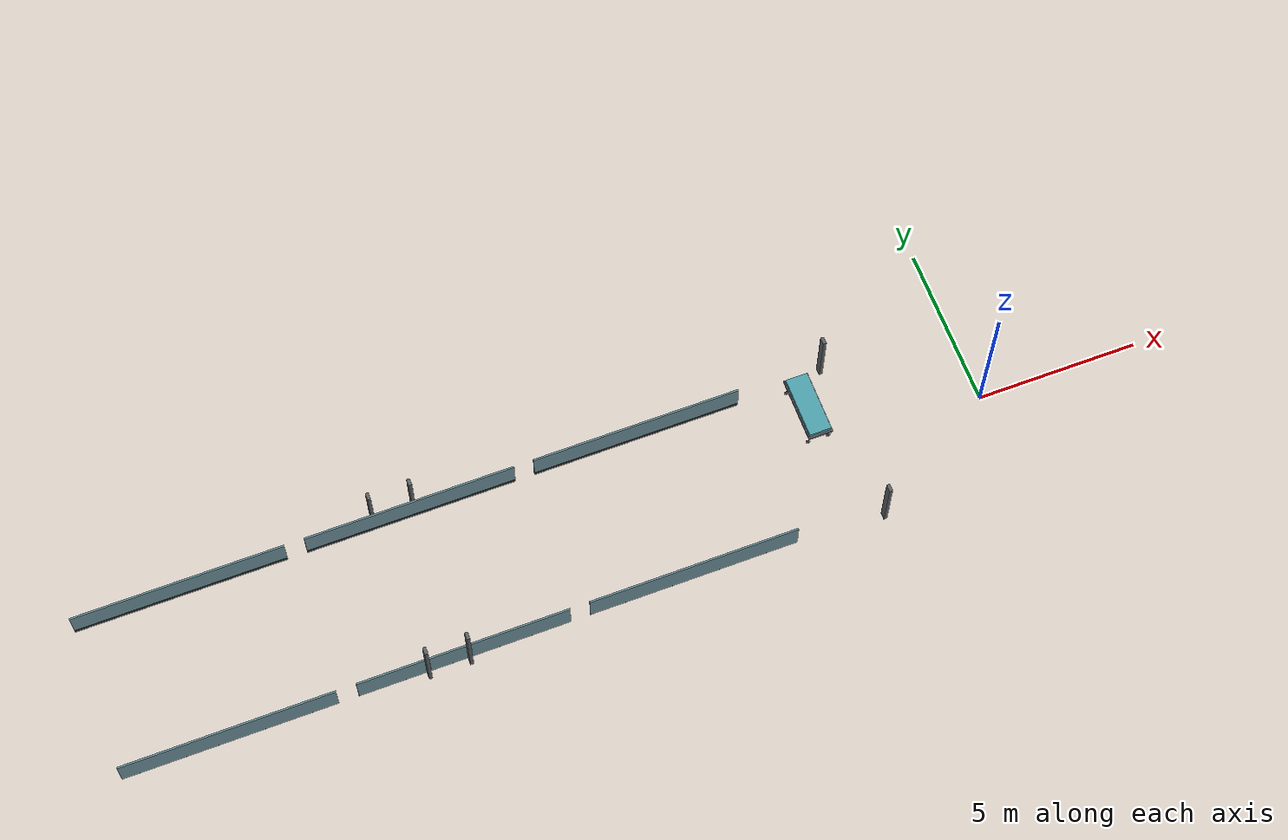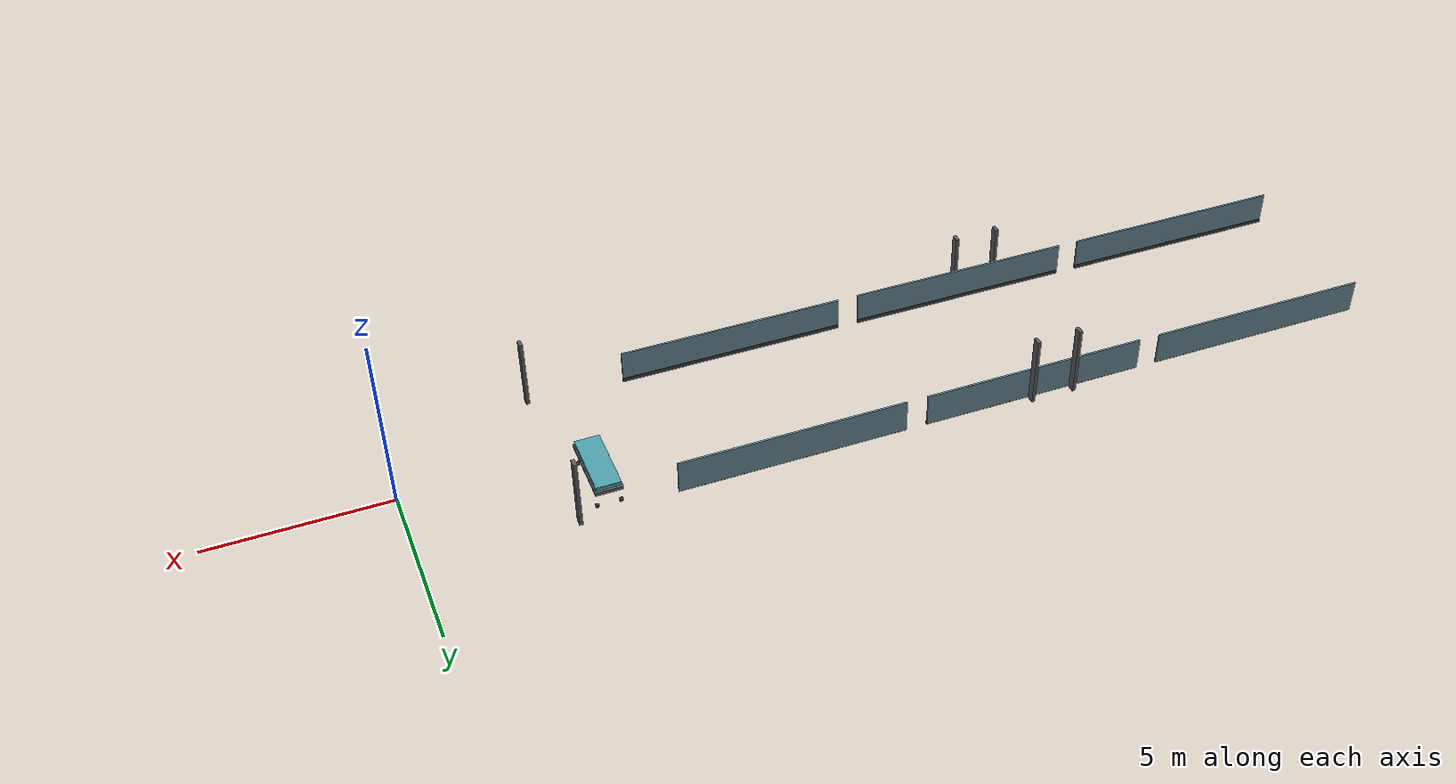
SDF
<sdf version="1.6">
 <world name="hospital">
  <include><uri>model://sun</uri></include>
  <model name="enh_wainscot_0_0">
   <static>true</static>
   <pose>-24.0 -2.36 0.49 0 0 0</pose>
   <link name="link">
    <collision name="c"><geometry><box><size>6.4 0.05 0.95</size></box></geometry></collision>
    <visual name="v">
     <geometry><box><size>6.4 0.05 0.95</size></box></geometry>
     <material>
      <ambient>0.420 0.560 0.600 1</ambient>
      <diffuse>0.420 0.560 0.600 1</diffuse>
      <specular>0.1 0.1 0.1 1</specular>
     </material>
    </visual>
   </link>
  </model>
  <model name="enh_baseboard_0_0">
   <static>true</static>
   <pose>-24.0 -2.35 0.06 0 0 0</pose>
   <link name="link">
    <collision name="c"><geometry><box><size>6.4 0.06 0.12</size></box></geometry></collision>
    <visual name="v">
     <geometry><box><size>6.4 0.06 0.12</size></box></geometry>
     <material>
      <ambient>0.220 0.240 0.250 1</ambient>
      <diffuse>0.220 0.240 0.250 1</diffuse>
      <specular>0.1 0.1 0.1 1</specular>
     </material>
    </visual>
   </link>
  </model>
  <model name="enh_wainscot_0_1">
   <static>true</static>
   <pose>-24.0 2.36 0.49 0 0 0</pose>
   <link name="link">
    <collision name="c"><geometry><box><size>6.4 0.05 0.95</size></box></geometry></collision>
    <visual name="v">
     <geometry><box><size>6.4 0.05 0.95</size></box></geometry>
     <material>
      <ambient>0.420 0.560 0.600 1</ambient>
      <diffuse>0.420 0.560 0.600 1</diffuse>
      <specular>0.1 0.1 0.1 1</specular>
     </material>
    </visual>
   </link>
  </model>
  <model name="enh_baseboard_0_1">
   <static>true</static>
   <pose>-24.0 2.35 0.06 0 0 0</pose>
   <link name="link">
    <collision name="c"><geometry><box><size>6.4 0.06 0.12</size></box></geometry></collision>
    <visual name="v">
     <geometry><box><size>6.4 0.06 0.12</size></box></geometry>
     <material>
      <ambient>0.220 0.240 0.250 1</ambient>
      <diffuse>0.220 0.240 0.250 1</diffuse>
      <specular>0.1 0.1 0.1 1</specular>
     </material>
    </visual>
   </link>
  </model>
  <model name="enh_wainscot_1_0">
   <static>true</static>
   <pose>-17.0 -2.36 0.49 0 0 0</pose>
   <link name="link">
    <collision name="c"><geometry><box><size>6.4 0.05 0.95</size></box></geometry></collision>
    <visual name="v">
     <geometry><box><size>6.4 0.05 0.95</size></box></geometry>
     <material>
      <ambient>0.420 0.560 0.600 1</ambient>
      <diffuse>0.420 0.560 0.600 1</diffuse>
      <specular>0.1 0.1 0.1 1</specular>
     </material>
    </visual>
   </link>
  </model>
  <model name="enh_baseboard_1_0">
   <static>true</static>
   <pose>-17.0 -2.35 0.06 0 0 0</pose>
   <link name="link">
    <collision name="c"><geometry><box><size>6.4 0.06 0.12</size></box></geometry></collision>
    <visual name="v">
     <geometry><box><size>6.4 0.06 0.12</size></box></geometry>
     <material>
      <ambient>0.220 0.240 0.250 1</ambient>
      <diffuse>0.220 0.240 0.250 1</diffuse>
      <specular>0.1 0.1 0.1 1</specular>
     </material>
    </visual>
   </link>
  </model>
  <model name="enh_wainscot_1_1">
   <static>true</static>
   <pose>-17.0 2.36 0.49 0 0 0</pose>
   <link name="link">
    <collision name="c"><geometry><box><size>6.4 0.05 0.95</size></box></geometry></collision>
    <visual name="v">
     <geometry><box><size>6.4 0.05 0.95</size></box></geometry>
     <material>
      <ambient>0.420 0.560 0.600 1</ambient>
      <diffuse>0.420 0.560 0.600 1</diffuse>
      <specular>0.1 0.1 0.1 1</specular>
     </material>
    </visual>
   </link>
  </model>
  <model name="enh_baseboard_1_1">
   <static>true</static>
   <pose>-17.0 2.35 0.06 0 0 0</pose>
   <link name="link">
    <collision name="c"><geometry><box><size>6.4 0.06 0.12</size></box></geometry></collision>
    <visual name="v">
     <geometry><box><size>6.4 0.06 0.12</size></box></geometry>
     <material>
      <ambient>0.220 0.240 0.250 1</ambient>
      <diffuse>0.220 0.240 0.250 1</diffuse>
      <specular>0.1 0.1 0.1 1</specular>
     </material>
    </visual>
   </link>
  </model>
  <model name="enh_wainscot_2_0">
   <static>true</static>
   <pose>-10.0 -2.36 0.49 0 0 0</pose>
   <link name="link">
    <collision name="c"><geometry><box><size>6.4 0.05 0.95</size></box></geometry></collision>
    <visual name="v">
     <geometry><box><size>6.4 0.05 0.95</size></box></geometry>
     <material>
      <ambient>0.420 0.560 0.600 1</ambient>
      <diffuse>0.420 0.560 0.600 1</diffuse>
      <specular>0.1 0.1 0.1 1</specular>
     </material>
    </visual>
   </link>
  </model>
  <model name="enh_baseboard_2_0">
   <static>true</static>
   <pose>-10.0 -2.35 0.06 0 0 0</pose>
   <link name="link">
    <collision name="c"><geometry><box><size>6.4 0.06 0.12</size></box></geometry></collision>
    <visual name="v">
     <geometry><box><size>6.4 0.06 0.12</size></box></geometry>
     <material>
      <ambient>0.220 0.240 0.250 1</ambient>
      <diffuse>0.220 0.240 0.250 1</diffuse>
      <specular>0.1 0.1 0.1 1</specular>
     </material>
    </visual>
   </link>
  </model>
  <model name="enh_wainscot_2_1">
   <static>true</static>
   <pose>-10.0 2.36 0.49 0 0 0</pose>
   <link name="link">
    <collision name="c"><geometry><box><size>6.4 0.05 0.95</size></box></geometry></collision>
    <visual name="v">
     <geometry><box><size>6.4 0.05 0.95</size></box></geometry>
     <material>
      <ambient>0.420 0.560 0.600 1</ambient>
      <diffuse>0.420 0.560 0.600 1</diffuse>
      <specular>0.1 0.1 0.1 1</specular>
     </material>
    </visual>
   </link>
  </model>
  <model name="enh_baseboard_2_1">
   <static>true</static>
   <pose>-10.0 2.35 0.06 0 0 0</pose>
   <link name="link">
    <collision name="c"><geometry><box><size>6.4 0.06 0.12</size></box></geometry></collision>
    <visual name="v">
     <geometry><box><size>6.4 0.06 0.12</size></box></geometry>
     <material>
      <ambient>0.220 0.240 0.250 1</ambient>
      <diffuse>0.220 0.240 0.250 1</diffuse>
      <specular>0.1 0.1 0.1 1</specular>
     </material>
    </visual>
   </link>
  </model>
  <model name="enh_doorframe_0_-1_-62">
   <static>true</static>
   <pose>-18.12 -2.5 1.02 0 0 0</pose>
   <link name="link">
    <collision name="c"><geometry><box><size>0.1 0.22 2.05</size></box></geometry></collision>
    <visual name="v">
     <geometry><box><size>0.1 0.22 2.05</size></box></geometry>
     <material>
      <ambient>0.350 0.370 0.380 1</ambient>
      <diffuse>0.350 0.370 0.380 1</diffuse>
      <specular>0.1 0.1 0.1 1</specular>
     </material>
    </visual>
   </link>
  </model>
  <model name="enh_doorframe_0_-1_62">
   <static>true</static>
   <pose>-16.88 -2.5 1.02 0 0 0</pose>
   <link name="link">
    <collision name="c"><geometry><box><size>0.1 0.22 2.05</size></box></geometry></collision>
    <visual name="v">
     <geometry><box><size>0.1 0.22 2.05</size></box></geometry>
     <material>
      <ambient>0.350 0.370 0.380 1</ambient>
      <diffuse>0.350 0.370 0.380 1</diffuse>
      <specular>0.1 0.1 0.1 1</specular>
     </material>
    </visual>
   </link>
  </model>
  <model name="enh_doorframe_0_1_-62">
   <static>true</static>
   <pose>-18.12 2.5 1.02 0 0 0</pose>
   <link name="link">
    <collision name="c"><geometry><box><size>0.1 0.22 2.05</size></box></geometry></collision>
    <visual name="v">
     <geometry><box><size>0.1 0.22 2.05</size></box></geometry>
     <material>
      <ambient>0.350 0.370 0.380 1</ambient>
      <diffuse>0.350 0.370 0.380 1</diffuse>
      <specular>0.1 0.1 0.1 1</specular>
     </material>
    </visual>
   </link>
  </model>
  <model name="enh_doorframe_0_1_62">
   <static>true</static>
   <pose>-16.88 2.5 1.02 0 0 0</pose>
   <link name="link">
    <collision name="c"><geometry><box><size>0.1 0.22 2.05</size></box></geometry></collision>
    <visual name="v">
     <geometry><box><size>0.1 0.22 2.05</size></box></geometry>
     <material>
      <ambient>0.350 0.370 0.380 1</ambient>
      <diffuse>0.350 0.370 0.380 1</diffuse>
      <specular>0.1 0.1 0.1 1</specular>
     </material>
    </visual>
   </link>
  </model>
  <model name="enh_doorframe_1_-1_-62">
   <static>true</static>
   <pose>-4.12 -2.5 1.02 0 0 0</pose>
   <link name="link">
    <collision name="c"><geometry><box><size>0.1 0.22 2.05</size></box></geometry></collision>
    <visual name="v">
     <geometry><box><size>0.1 0.22 2.05</size></box></geometry>
     <material>
      <ambient>0.350 0.370 0.380 1</ambient>
      <diffuse>0.350 0.370 0.380 1</diffuse>
      <specular>0.1 0.1 0.1 1</specular>
     </material>
    </visual>
   </link>
  </model>
  <model name="enh_doorframe_1_1_-62">
   <static>true</static>
   <pose>-4.12 2.5 1.02 0 0 0</pose>
   <link name="link">
    <collision name="c"><geometry><box><size>0.1 0.22 2.05</size></box></geometry></collision>
    <visual name="v">
     <geometry><box><size>0.1 0.22 2.05</size></box></geometry>
     <material>
      <ambient>0.350 0.370 0.380 1</ambient>
      <diffuse>0.350 0.370 0.380 1</diffuse>
      <specular>0.1 0.1 0.1 1</specular>
     </material>
    </visual>
   </link>
  </model>
  <model name="enh_gurney_frame_1">
   <static>true</static>
   <pose>-5.0 1.3 0.58 0 0 0</pose>
   <link name="link">
    <collision name="c"><geometry><box><size>0.75 2.0 0.1</size></box></geometry></collision>
    <visual name="v">
     <geometry><box><size>0.75 2.0 0.1</size></box></geometry>
     <material>
      <ambient>0.350 0.370 0.400 1</ambient>
      <diffuse>0.350 0.370 0.400 1</diffuse>
      <specular>0.1 0.1 0.1 1</specular>
     </material>
    </visual>
   </link>
  </model>
  <model name="enh_gurney_mattress_1">
   <static>true</static>
   <pose>-5.0 1.3 0.7 0 0 0</pose>
   <link name="link">
    <collision name="c"><geometry><box><size>0.68 1.9 0.12</size></box></geometry></collision>
    <visual name="v">
     <geometry><box><size>0.68 1.9 0.12</size></box></geometry>
     <material>
      <ambient>0.300 0.620 0.660 1</ambient>
      <diffuse>0.300 0.620 0.660 1</diffuse>
      <specular>0.1 0.1 0.1 1</specular>
     </material>
    </visual>
   </link>
  </model>
  <model name="enh_gurney_1_wheel_0">
   <static>true</static>
   <pose>-5.32 0.45000000000000007 0.06 1.5708 0 0</pose>
   <link name="link">
    <collision name="c">
     <geometry><cylinder><radius>0.06</radius><length>0.05</length></cylinder></geometry>
    </collision>
    <visual name="v">
     <geometry><cylinder><radius>0.06</radius><length>0.05</length></cylinder></geometry>
     <material>
      <ambient>0.120 0.120 0.130 1</ambient>
      <diffuse>0.120 0.120 0.130 1</diffuse>
      <specular>0.1 0.1 0.1 1</specular>
     </material>
    </visual>
   </link>
  </model>
  <model name="enh_gurney_1_wheel_1">
   <static>true</static>
   <pose>-4.68 0.45000000000000007 0.06 1.5708 0 0</pose>
   <link name="link">
    <collision name="c">
     <geometry><cylinder><radius>0.06</radius><length>0.05</length></cylinder></geometry>
    </collision>
    <visual name="v">
     <geometry><cylinder><radius>0.06</radius><length>0.05</length></cylinder></geometry>
     <material>
      <ambient>0.120 0.120 0.130 1</ambient>
      <diffuse>0.120 0.120 0.130 1</diffuse>
      <specular>0.1 0.1 0.1 1</specular>
     </material>
    </visual>
   </link>
  </model>
  <model name="enh_gurney_1_wheel_2">
   <static>true</static>
   <pose>-5.32 2.15 0.06 1.5708 0 0</pose>
   <link name="link">
    <collision name="c">
     <geometry><cylinder><radius>0.06</radius><length>0.05</length></cylinder></geometry>
    </collision>
    <visual name="v">
     <geometry><cylinder><radius>0.06</radius><length>0.05</length></cylinder></geometry>
     <material>
      <ambient>0.120 0.120 0.130 1</ambient>
      <diffuse>0.120 0.120 0.130 1</diffuse>
      <specular>0.1 0.1 0.1 1</specular>
     </material>
    </visual>
   </link>
  </model>
  <model name="enh_gurney_1_wheel_3">
   <static>true</static>
   <pose>-4.68 2.15 0.06 1.5708 0 0</pose>
   <link name="link">
    <collision name="c">
     <geometry><cylinder><radius>0.06</radius><length>0.05</length></cylinder></geometry>
    </collision>
    <visual name="v">
     <geometry><cylinder><radius>0.06</radius><length>0.05</length></cylinder></geometry>
     <material>
      <ambient>0.120 0.120 0.130 1</ambient>
      <diffuse>0.120 0.120 0.130 1</diffuse>
      <specular>0.1 0.1 0.1 1</specular>
     </material>
    </visual>
   </link>
  </model>
 </world>
</sdf>
